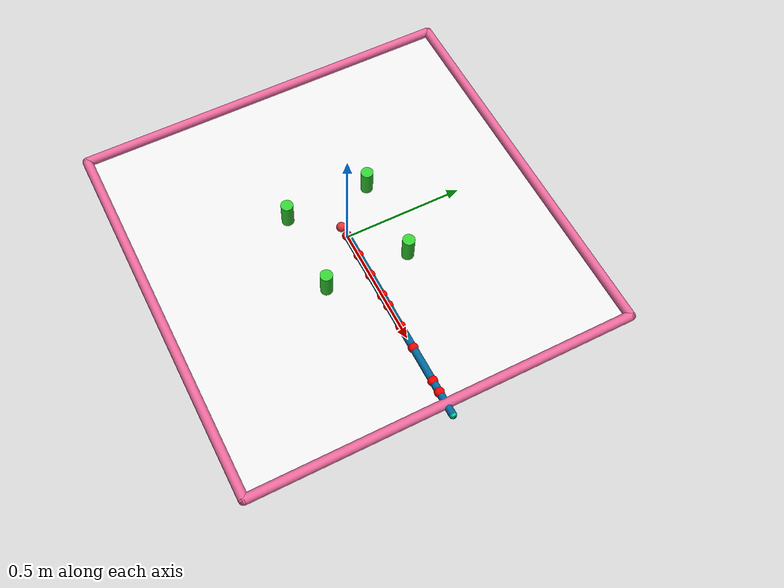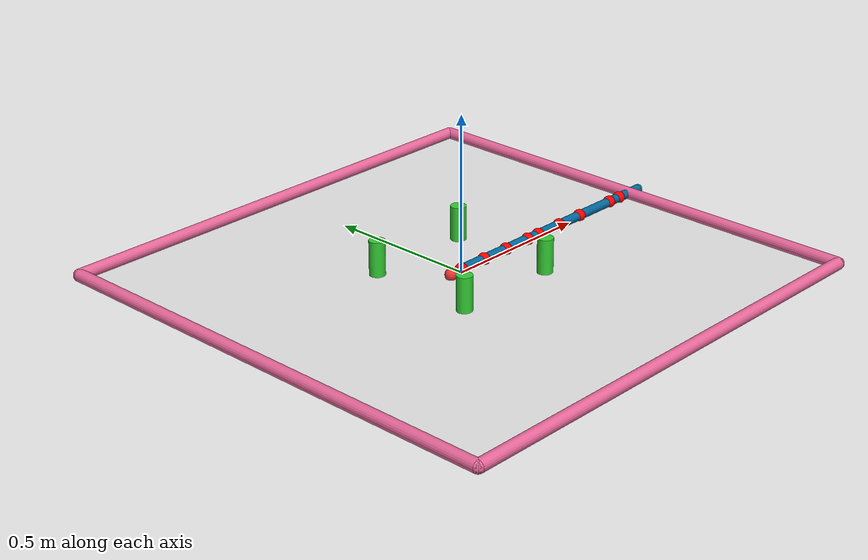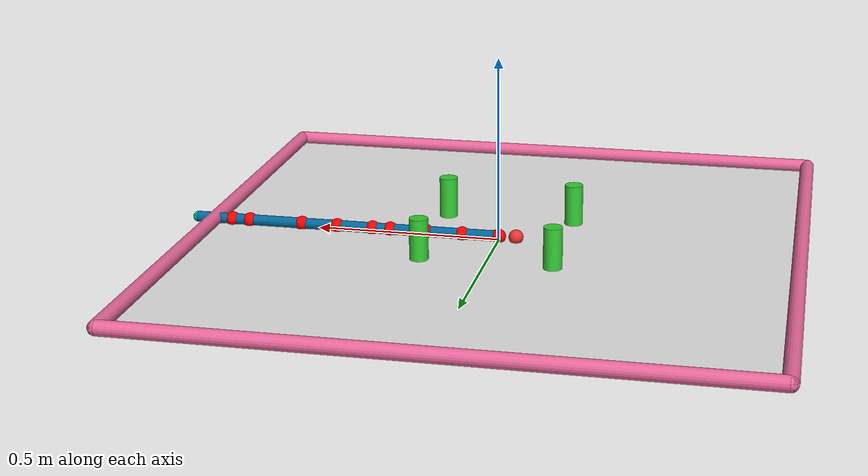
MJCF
<mujoco model="gen30_best_10j_0.10_0.10_0.10_0.05_0.10_0.10_0.15_0.05_0.05_0.05">
  <compiler angle="radian" inertiafromgeom="true"/>
  <default>
    <joint armature="1" damping="1" limited="true"/>
    <geom contype="1" conaffinity="1" friction="1 0.1 0.1" rgba="0.7 0.7 0 1" density="1000"/>
  </default>
  <option gravity="0 0 -9.81" integrator="RK4" timestep="0.005"/>
  <worldbody>
    <geom conaffinity="0" contype="0" name="ground" pos="0 0 0" rgba="0.9 0.9 0.9 1" size="0.8 0.8 10" type="plane"/>
    <geom conaffinity="0" contype="0" name="sideS" rgba="0.9 0.4 0.6 1" size="0.02" type="capsule" fromto="-0.8 -0.8 .01 0.8 -0.8 .01"/>
    <geom conaffinity="0" contype="0" name="sideE" rgba="0.9 0.4 0.6 1" size="0.02" type="capsule" fromto="0.8 -0.8 .01 0.8 0.8 .01"/>
    <geom conaffinity="0" contype="0" name="sideN" rgba="0.9 0.4 0.6 1" size="0.02" type="capsule" fromto="-0.8 0.8 .01 0.8 0.8 .01"/>
    <geom conaffinity="0" contype="0" name="sideW" rgba="0.9 0.4 0.6 1" size="0.02" type="capsule" fromto="-0.8 -0.8 .01 -0.8 0.8 .01"/>
    <geom conaffinity="0" contype="0" name="root" rgba="0.9 0.4 0.6 1" size=".011" type="cylinder" fromto="0 0 0 0 0 0.02"/>
    <body name="body0" pos="0 0 0.01">
      <geom name="link0" type="capsule" size="0.015" rgba="0.0 0.4 0.6 1" fromto="0 0 0 0.1 0 0" margin="0.005"/>
      <joint name="joint0" type="hinge" pos="0 0 0" axis="0 0 1" limited="false"/>
      <geom name="joint_guard_0" type="sphere" size="0.02" rgba="1 0 0 1" pos="0 0 0" contype="1" conaffinity="1" margin="0.002"/>
      <body name="body1" pos="0.1 0 0">
      <geom name="link1" type="capsule" size="0.015" rgba="0.0 0.4 0.6 1" fromto="0 0 0 0.1 0 0" margin="0.005"/>
      <joint name="joint1" type="hinge" pos="0 0 0" axis="0 0 1" limited="true" range="-2.2 2.2"/>
      <geom name="joint_guard_1" type="sphere" size="0.02" rgba="1 0 0 1" pos="0 0 0" contype="1" conaffinity="1" margin="0.002"/>
      <body name="body2" pos="0.1 0 0">
      <geom name="link2" type="capsule" size="0.015" rgba="0.0 0.4 0.6 1" fromto="0 0 0 0.1 0 0" margin="0.005"/>
      <joint name="joint2" type="hinge" pos="0 0 0" axis="0 0 1" limited="true" range="-2.2 2.2"/>
      <geom name="joint_guard_2" type="sphere" size="0.02" rgba="1 0 0 1" pos="0 0 0" contype="1" conaffinity="1" margin="0.002"/>
      <body name="body3" pos="0.1 0 0">
      <geom name="link3" type="capsule" size="0.015" rgba="0.0 0.4 0.6 1" fromto="0 0 0 0.05 0 0" margin="0.005"/>
      <joint name="joint3" type="hinge" pos="0 0 0" axis="0 0 1" limited="true" range="-2.2 2.2"/>
      <geom name="joint_guard_3" type="sphere" size="0.02" rgba="1 0 0 1" pos="0 0 0" contype="1" conaffinity="1" margin="0.002"/>
      <body name="body4" pos="0.05 0 0">
      <geom name="link4" type="capsule" size="0.015" rgba="0.0 0.4 0.6 1" fromto="0 0 0 0.1 0 0" margin="0.005"/>
      <joint name="joint4" type="hinge" pos="0 0 0" axis="0 0 1" limited="true" range="-2.2 2.2"/>
      <geom name="joint_guard_4" type="sphere" size="0.02" rgba="1 0 0 1" pos="0 0 0" contype="1" conaffinity="1" margin="0.002"/>
      <body name="body5" pos="0.1 0 0">
      <geom name="link5" type="capsule" size="0.015" rgba="0.0 0.4 0.6 1" fromto="0 0 0 0.1 0 0" margin="0.005"/>
      <joint name="joint5" type="hinge" pos="0 0 0" axis="0 0 1" limited="true" range="-2.2 2.2"/>
      <geom name="joint_guard_5" type="sphere" size="0.02" rgba="1 0 0 1" pos="0 0 0" contype="1" conaffinity="1" margin="0.002"/>
      <body name="body6" pos="0.1 0 0">
      <geom name="link6" type="capsule" size="0.015" rgba="0.0 0.4 0.6 1" fromto="0 0 0 0.15 0 0" margin="0.005"/>
      <joint name="joint6" type="hinge" pos="0 0 0" axis="0 0 1" limited="true" range="-2.2 2.2"/>
      <geom name="joint_guard_6" type="sphere" size="0.02" rgba="1 0 0 1" pos="0 0 0" contype="1" conaffinity="1" margin="0.002"/>
      <body name="body7" pos="0.15 0 0">
      <geom name="link7" type="capsule" size="0.015" rgba="0.0 0.4 0.6 1" fromto="0 0 0 0.05 0 0" margin="0.005"/>
      <joint name="joint7" type="hinge" pos="0 0 0" axis="0 0 1" limited="true" range="-2.2 2.2"/>
      <geom name="joint_guard_7" type="sphere" size="0.02" rgba="1 0 0 1" pos="0 0 0" contype="1" conaffinity="1" margin="0.002"/>
      <body name="body8" pos="0.05 0 0">
      <geom name="link8" type="capsule" size="0.015" rgba="0.0 0.4 0.6 1" fromto="0 0 0 0.05 0 0" margin="0.005"/>
      <joint name="joint8" type="hinge" pos="0 0 0" axis="0 0 1" limited="true" range="-2.2 2.2"/>
      <geom name="joint_guard_8" type="sphere" size="0.02" rgba="1 0 0 1" pos="0 0 0" contype="1" conaffinity="1" margin="0.002"/>
      <body name="body9" pos="0.05 0 0">
      <geom name="link9" type="capsule" size="0.015" rgba="0.0 0.4 0.6 1" fromto="0 0 0 0.05 0 0" margin="0.005"/>
      <joint name="joint9" type="hinge" pos="0 0 0" axis="0 0 1" limited="true" range="-2.2 2.2"/>
      <geom name="joint_guard_9" type="sphere" size="0.02" rgba="1 0 0 1" pos="0 0 0" contype="1" conaffinity="1" margin="0.002"/>
      <body name="fingertip" pos="0.05 0 0">
        <geom name="fingertip_col" type="sphere" size="0.02" rgba="0 0 0 0" pos="0 0 0" contype="1" conaffinity="1" margin="0.002"/>
        <geom name="fingertip_vis" type="sphere" size="0.015" rgba="0.0 0.8 0.6 1" pos="0 0 0" contype="0" conaffinity="0"/>
      </body>
    </body>
    </body>
    </body>
    </body>
    </body>
    </body>
    </body>
    </body>
    </body>
    </body>
    <body name="target" pos="-0.0473 -0.0030 0.01">
      <joint name="target_x" type="slide" axis="1 0 0" limited="true" range="-0.5 0.5" ref="-0.0473" damping="0" armature="0" stiffness="0"/>
      <joint name="target_y" type="slide" axis="0 1 0" limited="true" range="-0.5 0.5" ref="-0.0030" damping="0" armature="0" stiffness="0"/>
      <geom name="target" type="sphere" size="0.02" rgba="0.9 0.2 0.2 1" pos="0 0 0" contype="0" conaffinity="0"/>
    </body>
    <body name="obstacle_0" pos="0.1768 0.1768 0.01">
      <geom name="obs_geom_0" type="cylinder" size="0.0250 0.1" rgba="0.2 0.8 0.2 1" contype="1" conaffinity="1"/>
    </body>
    <body name="obstacle_1" pos="-0.1768 0.1768 0.01">
      <geom name="obs_geom_1" type="cylinder" size="0.0250 0.1" rgba="0.2 0.8 0.2 1" contype="1" conaffinity="1"/>
    </body>
    <body name="obstacle_2" pos="-0.1768 -0.1768 0.01">
      <geom name="obs_geom_2" type="cylinder" size="0.0250 0.1" rgba="0.2 0.8 0.2 1" contype="1" conaffinity="1"/>
    </body>
    <body name="obstacle_3" pos="0.1768 -0.1768 0.01">
      <geom name="obs_geom_3" type="cylinder" size="0.0250 0.1" rgba="0.2 0.8 0.2 1" contype="1" conaffinity="1"/>
    </body>
  </worldbody>
  <actuator>
    <motor joint="joint0" ctrllimited="true" ctrlrange="-1.0 1.0" gear="40.0"/>
    <motor joint="joint1" ctrllimited="true" ctrlrange="-1.0 1.0" gear="40.0"/>
    <motor joint="joint2" ctrllimited="true" ctrlrange="-1.0 1.0" gear="40.0"/>
    <motor joint="joint3" ctrllimited="true" ctrlrange="-1.0 1.0" gear="40.0"/>
    <motor joint="joint4" ctrllimited="true" ctrlrange="-1.0 1.0" gear="40.0"/>
    <motor joint="joint5" ctrllimited="true" ctrlrange="-1.0 1.0" gear="40.0"/>
    <motor joint="joint6" ctrllimited="true" ctrlrange="-1.0 1.0" gear="40.0"/>
    <motor joint="joint7" ctrllimited="true" ctrlrange="-1.0 1.0" gear="40.0"/>
    <motor joint="joint8" ctrllimited="true" ctrlrange="-1.0 1.0" gear="40.0"/>
    <motor joint="joint9" ctrllimited="true" ctrlrange="-1.0 1.0" gear="40.0"/>
  </actuator>
</mujoco>
